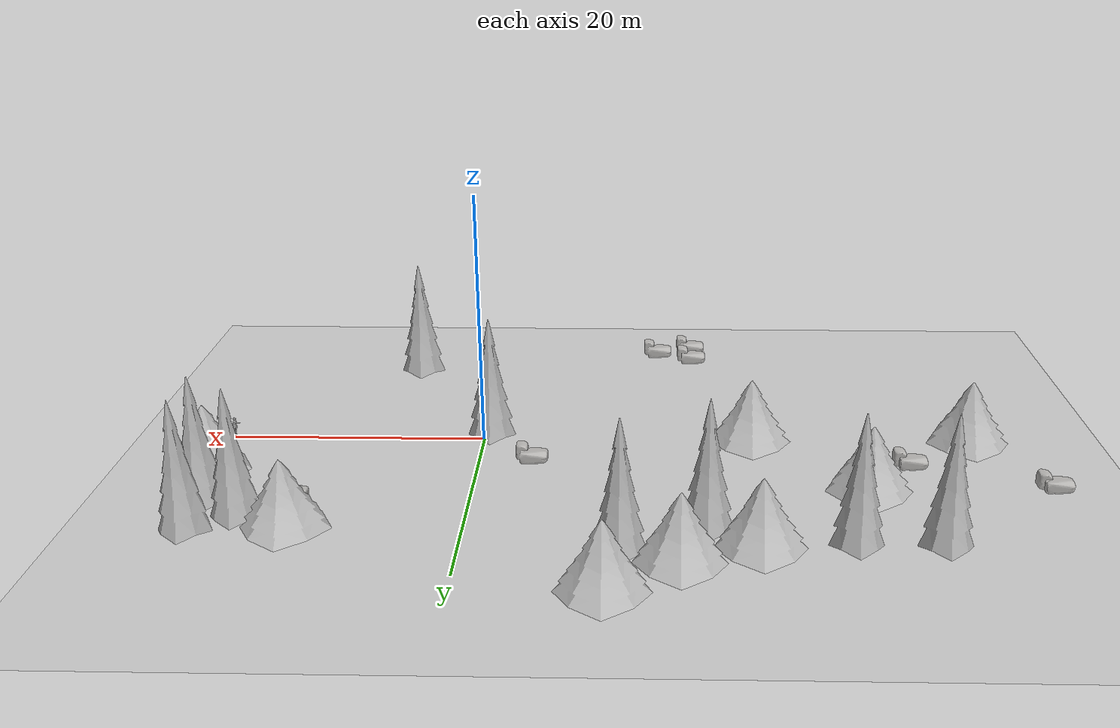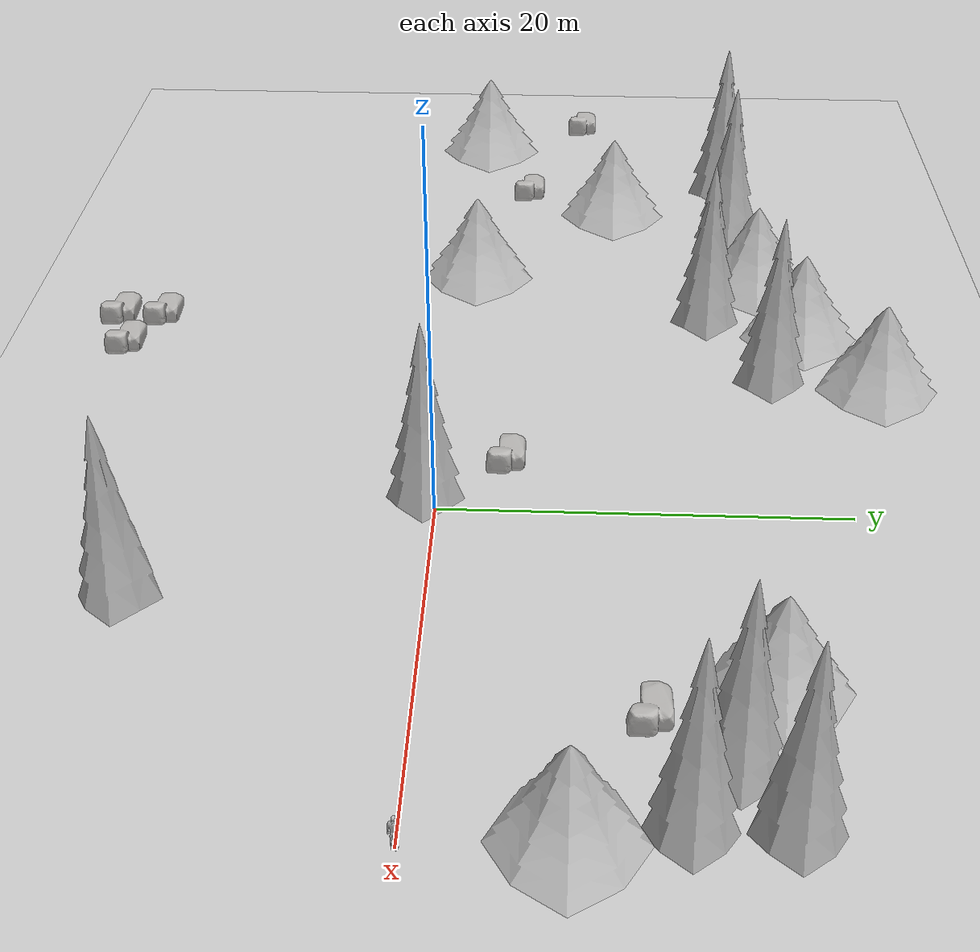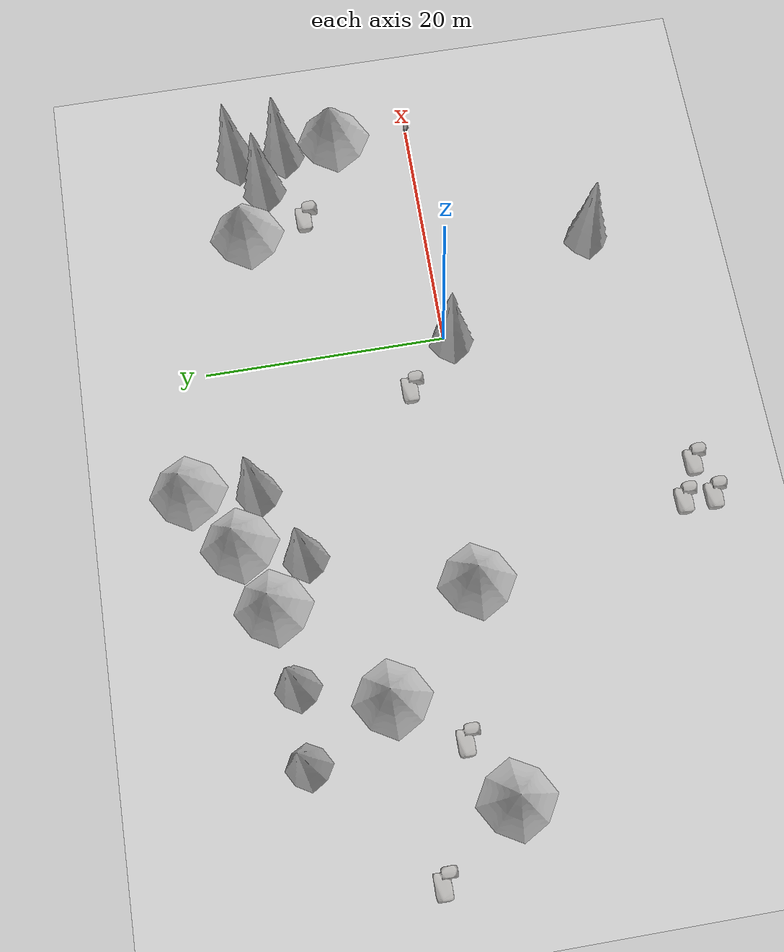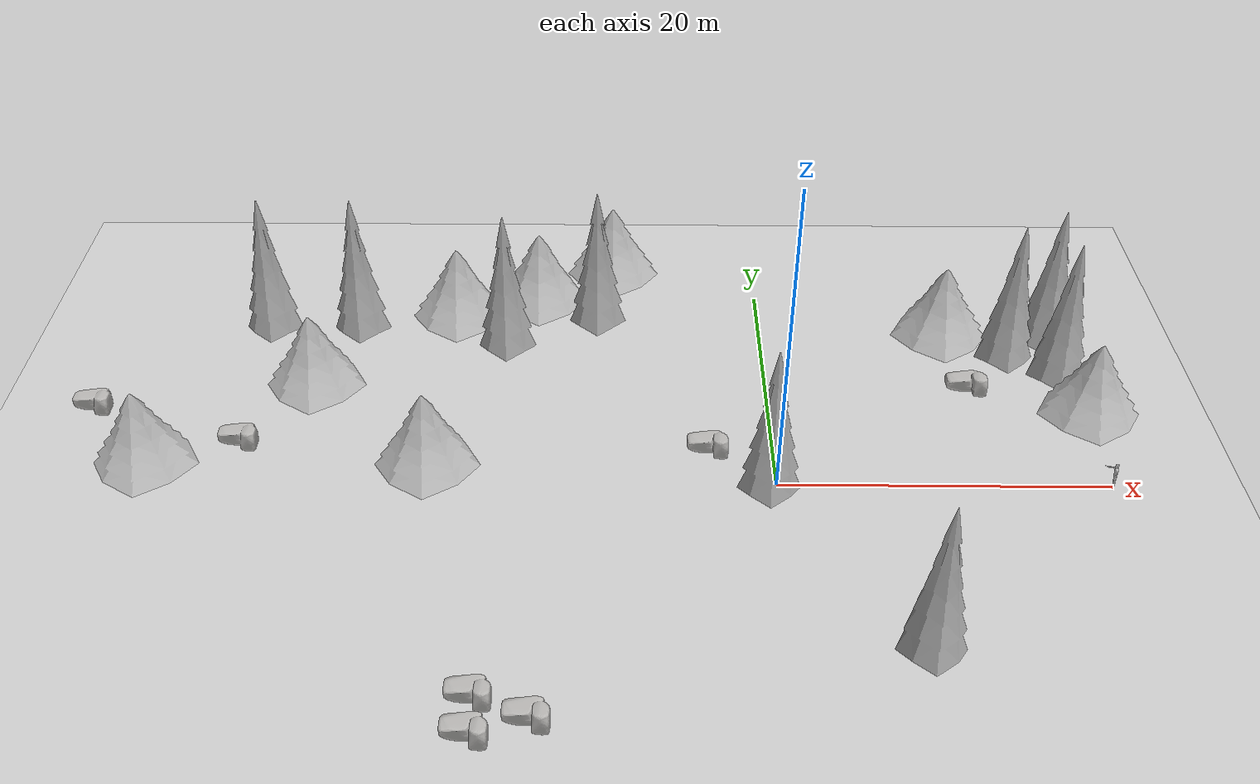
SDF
<sdf version="1.4">
 <world name="mountain_world">
  <physics type="ode"><max_step_size>0.001</max_step_size></physics>
  <scene><sky><clouds><speed>12</speed></clouds></sky></scene>
  <include><uri>model://ground_plane</uri></include>
  <include><uri>model://sun</uri></include>
  <include><name>bigtree01</name><uri>model://bigtree</uri><pose>19.99 6.41 0 0 0 0</pose></include>
  <include><name>bigtree02</name><uri>model://bigtree</uri><pose>11.99 14.99 0 0 0 0</pose></include>
  <include><name>tree01</name><uri>model://tree</uri><pose>19.02 10.99 0 0 0 0</pose></include>
  <include><name>tree02</name><uri>model://tree</uri><pose>18.99 14.99 0 0 0 0</pose></include>
  <include><name>tree03</name><uri>model://tree</uri><pose>15.99 12.99 0 0 0 0</pose></include>
  <include><name>rock01</name><uri>model://rock</uri><pose>13 9.96 0 0 0 0</pose></include>
  <include><name>tree04</name><uri>model://tree</uri><pose>6.99 -13.45 0 0 0 0</pose></include>
  <include><name>tree05</name><uri>model://tree</uri><pose>-0.56 -0.5 0 0 0 0</pose></include>
  <include><name>rock02</name><uri>model://rock</uri><pose>-13.99 -18.04 0 0 0 0</pose></include>
  <include><name>rock03</name><uri>model://rock</uri><pose>-17.03 -16.61 0 0 0 0</pose></include>
  <include><name>rock04</name><uri>model://rock</uri><pose>-17.02 -19.06 0 0 0 0</pose></include>
  <include><name>bigtree03</name><uri>model://bigtree</uri><pose>-21 0.99 0 0 0 0</pose></include>
  <include><name>bigtree04</name><uri>model://bigtree</uri><pose>-29 8.99 0 0 0 0</pose></include>
  <include><name>bigtree05</name><uri>model://bigtree</uri><pose>-38 0.99 0 0 0 0</pose></include>
  <include><name>rock05</name><uri>model://rock</uri><pose>-32.99 3.96 0 0 0 0</pose></include>
  <include><name>rock06</name><uri>model://rock</uri><pose>-42.99 7.42 0 0 0 0</pose></include>
  <include><name>tree06</name><uri>model://tree</uri><pose>-33 15.99 0 0 0 0</pose></include>
  <include><name>tree07</name><uri>model://tree</uri><pose>-27 15.99 0 0 0 0</pose></include>
  <include><name>tree08</name><uri>model://tree</uri><pose>-17 13.99 0 0 0 0</pose></include>
  <include><name>tree09</name><uri>model://tree</uri><pose>-11 16.99 0 0 0 0</pose></include>
  <include><name>bigtree06</name><uri>model://bigtree</uri><pose>-10 22.50 0 0 0 0</pose></include>
  <include><name>bigtree07</name><uri>model://bigtree</uri><pose>-15 18.99 0 0 0 0</pose></include>
  <include><name>bigtree08</name><uri>model://bigtree</uri><pose>-20.45 16.99 0 0 0 0</pose></include>
  <include><name>busy_genius</name><uri>model://genius</uri><pose>20 0 0 0 0 17</pose></include>
  <include><name>rock07</name><uri>model://rock</uri><pose>-4 3.5 0 0 0 0</pose></include>
 </world>
</sdf>

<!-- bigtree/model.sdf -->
<sdf version="1.5">
  <model name="bigtree_model">
<static>
true
</static>
    <link name="bigtree_link">
      <inertial>
        <mass>0.390</mass>
        <inertia>
          <ixx>0.00058</ixx>
          <ixy>0</ixy>
          <ixz>0</ixz>
          <iyy>0.00058</iyy>
          <iyz>0</iyz>
          <izz>0.00019</izz>
        </inertia>
      </inertial>
      <collision name="bigtree_collision">
        <geometry>
          <mesh>
            <uri>model://bigtree/meshes/tanne2.dae</uri>
          </mesh>
        </geometry>
        <surface>
          <friction>
            <ode>
              <mu>1.0</mu>
              <mu2>1.0</mu2>
            </ode>
          </friction>
          <contact>
            <ode>
              <kp>10000000.0</kp>
              <kd>1.0</kd>
              <min_depth>0.001</min_depth>
              <max_vel>0.1</max_vel>
            </ode>
          </contact>
        </surface>
      </collision>
      <visual name="bigtree_visual">
        <geometry>
          <mesh>
            <uri>model://bigtree/meshes/tanne2.dae</uri>
          </mesh>
        </geometry>
      </visual>
    </link>
  </model>
</sdf>

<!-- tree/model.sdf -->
<sdf version="1.5">
  <model name="tree_model">
<static>
  true
</static>
    <link name="tree_link">
      <inertial>
        <mass>0.390</mass>
        <inertia>
          <ixx>0.00058</ixx>
          <ixy>0</ixy>
          <ixz>0</ixz>
          <iyy>0.00058</iyy>
          <iyz>0</iyz>
          <izz>0.00019</izz>
        </inertia>
      </inertial>
      <collision name="tree_collision">
        <geometry>
          <mesh>
            <uri>model://tree/meshes/tanne1.dae</uri>
          </mesh>
        </geometry>
        <surface>
          <friction>
            <ode>
              <mu>1.0</mu>
              <mu2>1.0</mu2>
            </ode>
          </friction>
          <contact>
            <ode>
              <kp>10000000.0</kp>
              <kd>1.0</kd>
              <min_depth>0.001</min_depth>
              <max_vel>0.1</max_vel>
            </ode>
          </contact>
        </surface>
      </collision>
      <visual name="tree_visual">
        <geometry>
          <mesh>
            <uri>model://tree/meshes/tanne1.dae</uri>
          </mesh>
        </geometry>
      </visual>
    </link>
  </model>
</sdf>

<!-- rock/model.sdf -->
<sdf version="1.5">
  <model name="rock_model">
    <static>
      true
    </static>
    <link name="rock_link">
      <inertial>
        <mass>0.390</mass>
        <inertia>
          <ixx>0.00058</ixx>
          <ixy>0</ixy>
          <ixz>0</ixz>
          <iyy>0.00058</iyy>
          <iyz>0</iyz>
          <izz>0.00019</izz>
        </inertia>
      </inertial>
      <collision name="rock_collision">
        <geometry>
          <mesh>
            <uri>model://rock/meshes/rock.dae</uri>
          </mesh>
        </geometry>
        <surface>
          <friction>
            <ode>
              <mu>1.0</mu>
              <mu2>1.0</mu2>
            </ode>
          </friction>
          <contact>
            <ode>
              <kp>10000000.0</kp>
              <kd>1.0</kd>
              <min_depth>0.001</min_depth>
              <max_vel>0.1</max_vel>
            </ode>
          </contact>
        </surface>
      </collision>
      <visual name="rock_visual">
        <geometry>
          <mesh>
            <uri>model://rock/meshes/rock.dae</uri>
          </mesh>
        </geometry>
      </visual>
    </link>
  </model>
</sdf>

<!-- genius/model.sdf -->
<sdf version="1.5">
  <model name="genius_model">
    <static>
      true
    </static>
    <link name="genius_link">
      <inertial>
        <mass>0.390</mass>
        <inertia>
          <ixx>0.00058</ixx>
          <ixy>0</ixy>
          <ixz>0</ixz>
          <iyy>0.00058</iyy>
          <iyz>0</iyz>
          <izz>0.00019</izz>
        </inertia>
      </inertial>
      <collision name="genius_collision">
        <geometry>
          <mesh>
            <uri>model://genius/meshes/genius.dae</uri>
          </mesh>
        </geometry>
        <surface>
          <friction>
            <ode>
              <mu>1.0</mu>
              <mu2>1.0</mu2>
            </ode>
          </friction>
          <contact>
            <ode>
              <kp>10000000.0</kp>
              <kd>1.0</kd>
              <min_depth>0.001</min_depth>
              <max_vel>0.1</max_vel>
            </ode>
          </contact>
        </surface>
      </collision>
      <visual name="victim_visual">
        <geometry>
          <mesh>
            <uri>model://genius/meshes/genius.dae</uri>
          </mesh>
        </geometry>
      </visual>
    </link>
  </model>
</sdf>
